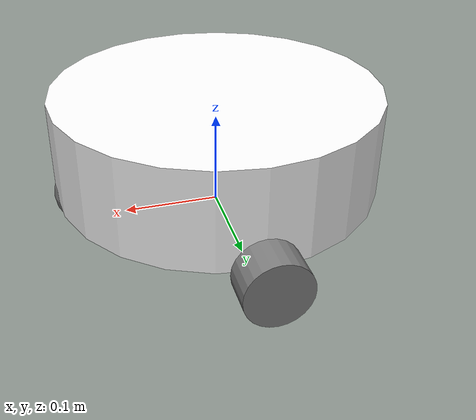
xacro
<?xml version="1.0"?>

<robot name="RobotSystem" xmlns:xacro="http://www.ros.org/wiki/xacro">

  <xacro:include filename="inertial_macros.xacro" />
  <xacro:include filename="robot.gazebo.xacro" />
  <xacro:include filename="robot.ros2_control.xacro" />

  <material name="white">
   <color rgba="1 1 1 1"/>
  </material>
  <material name="green">
   <color rgba="0 1 0 1"/>
  </material>
  <material name="gray">
   <color rgba="0.5 0.5 0.5 1"/>
  </material>

 <link name="base_footprint" />

<link name="base_link">
   <visual>
     <geometry>
       <cylinder radius="0.17" length="0.102"/>
     </geometry>
     <origin xyz="0 0 0" rpy="0 0 0"/>
     <material name="white"/>
   </visual>
   <collision>
     <geometry>
       <cylinder radius="0.17" length="0.102"/>
     </geometry>
     <origin xyz="0 0 0" rpy="0 0 0"/>
   </collision>
   <xacro:cylinder_inertia m="4" r="0.17" l="0.102" o_xyz="0 0 0" o_rpy="0 0 0" />
</link>

<!-- Base link -->
 <joint name="base_link_joint" type="fixed">
   <parent link="base_footprint"/>
   <child link="base_link"/>
   <origin xyz="0 0 0.0835" rpy="0 0 0"/>
</joint>

<link name="caster_wheel">
   <visual>
      <geometry>
        <sphere radius="0.0325"/>
      </geometry>
      <origin xyz="0 0 0" rpy="0 0 0"/>
      <material name="gray"/>
   </visual>
   <collision>
      <geometry>
        <sphere radius="0.0325"/>
      </geometry>
      <origin xyz="0 0 0" rpy="0 0 0"/>
   </collision>
   <xacro:sphere_inertia m="0.2" r="0.0325" o_xyz="0 0 0" o_rpy="0 0 0" />
</link>

<joint name="caster_wheel_joint" type="fixed">
    <parent link="base_link"/>
    <child link="caster_wheel"/>
    <origin xyz="0.14 0 -0.051" rpy="0 0 0"/>
</joint>

<link name="left_wheel">
  <visual>
      <geometry>
          <cylinder radius="0.0325" length="0.036"/>
      </geometry>
      <material name="gray"/>
      <origin xyz="0 0 0" rpy="0 0 0" />
  </visual>
  <collision>
    <geometry>
        <cylinder radius="0.0325" length="0.036"/>
    </geometry>
    <origin xyz="0 0 0" rpy="0 0 0" />
</collision>
<xacro:cylinder_inertia m="1" r="0.0325" l="0.036" o_xyz="0 0 0" o_rpy="0 0 0" />
</link>

<joint name="left_wheel_joint" type="continuous">
  <parent link="base_link"/>
  <child link="left_wheel"/>
  <origin xyz="0 0.188 -0.051" rpy="1.57 0 0" />
  <axis xyz="0 0 -1"/>
</joint>

<link name="right_wheel">
  <visual>
      <geometry>
          <cylinder radius="0.0325" length="0.036"/>
      </geometry>
      <material name="gray"/>
      <origin xyz="0 0 0" rpy="0 0 0" />
  </visual>
  <collision>
    <geometry>
        <cylinder radius="0.0325" length="0.036"/>
    </geometry>
    <origin xyz="0 0 0" rpy="0 0 0" />
</collision>
<xacro:cylinder_inertia m="1" r="0.0325" l="0.036" o_xyz="0 0 0" o_rpy="0 0 0" />
</link>

<joint name="right_wheel_joint" type="continuous">
  <parent link="base_link"/>
  <child link="right_wheel"/>
  <origin xyz="0 -0.188 -0.051" rpy="1.57 0 0" />
  <axis xyz="0 0 -1"/>
</joint>

<link name="caster_wheel_back">
   <visual>
      <geometry>
        <sphere radius="0.0325"/>
      </geometry>
      <origin xyz="0 0 0" rpy="0 0 0"/>
      <material name="gray"/>
   </visual>
   <collision>
      <geometry>
        <sphere radius="0.0325"/>
      </geometry>
      <origin xyz="0 0 0" rpy="0 0 0"/>
   </collision>
   <xacro:sphere_inertia m="0.2" r="0.0325" o_xyz="0 0 0" o_rpy="0 0 0" />
</link>

<joint name="caster_wheel_back_joint" type="fixed">
    <parent link="base_link"/>
    <child link="caster_wheel_back"/>
    <origin xyz="-0.14 0 -0.051" rpy="0 0 0"/>
</joint>

</robot>
